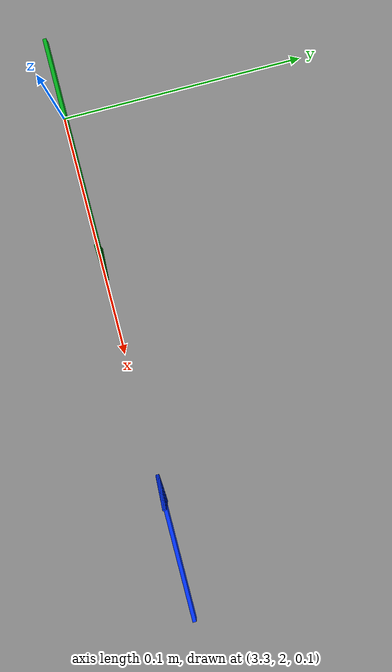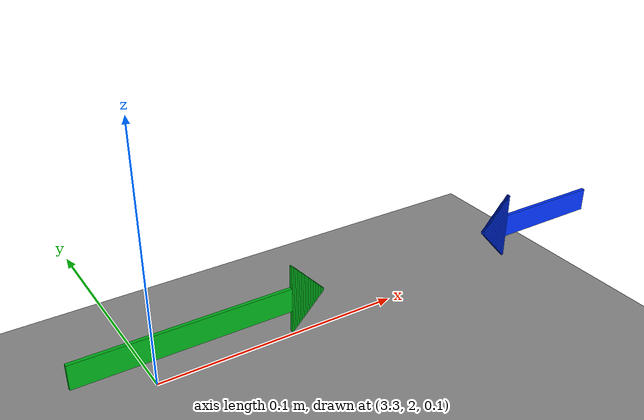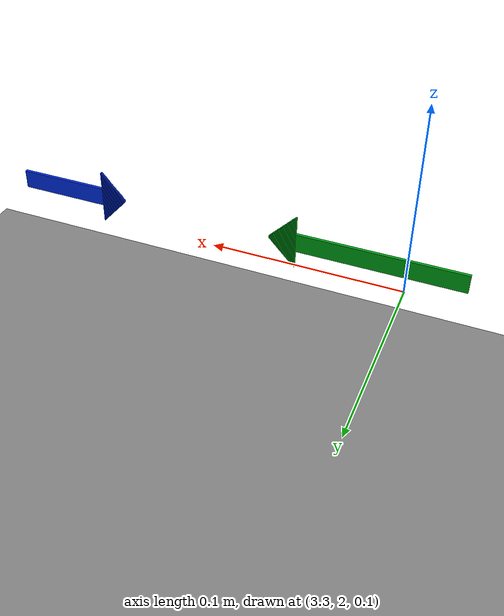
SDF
<sdf version="1.9">
 <world name="ros2_world">
  <model name="ground_plane">
   <static>true</static>
   <link name="link">
    <collision name="collision">
     <geometry><plane><normal>0 0 1</normal><size>30 30</size></plane></geometry>
    </collision>
    <visual name="visual">
     <geometry><plane><normal>0 0 1</normal><size>30 30</size></plane></geometry>
     <material><ambient>0.55 0.55 0.55 1</ambient><diffuse>0.55 0.55 0.55 1</diffuse></material>
    </visual>
   </link>
  </model>
  <model name="flechas">
   <static>true</static>
   <link name="flecha_13">
    <pose>3.32 2.00125 0.115 0 0 0</pose>
    <visual name="p0">
     <pose>-0.007 0 0 0 0 0</pose>
     <geometry><box><size>0.085 0.0015 0.01</size></box></geometry>
     <material><ambient>0 0.7 0.1 1</ambient><diffuse>0 0.7 0.1 1</diffuse></material>
    </visual>
    <visual name="p1">
     <pose>0.03578 0 0 0 0 0</pose>
     <geometry><box><size>0.00056 0.0015 0.029</size></box></geometry>
     <material><ambient>0 0.7 0.1 1</ambient><diffuse>0 0.7 0.1 1</diffuse></material>
    </visual>
    <visual name="p2">
     <pose>0.03634 0 0 0 0 0</pose>
     <geometry><box><size>0.00056 0.0015 0.02784</size></box></geometry>
     <material><ambient>0 0.7 0.1 1</ambient><diffuse>0 0.7 0.1 1</diffuse></material>
    </visual>
    <visual name="p3">
     <pose>0.0369 0 0 0 0 0</pose>
     <geometry><box><size>0.00056 0.0015 0.02668</size></box></geometry>
     <material><ambient>0 0.7 0.1 1</ambient><diffuse>0 0.7 0.1 1</diffuse></material>
    </visual>
    <visual name="p4">
     <pose>0.03746 0 0 0 0 0</pose>
     <geometry><box><size>0.00056 0.0015 0.02552</size></box></geometry>
     <material><ambient>0 0.7 0.1 1</ambient><diffuse>0 0.7 0.1 1</diffuse></material>
    </visual>
    <visual name="p5">
     <pose>0.03802 0 0 0 0 0</pose>
     <geometry><box><size>0.00056 0.0015 0.02436</size></box></geometry>
     <material><ambient>0 0.7 0.1 1</ambient><diffuse>0 0.7 0.1 1</diffuse></material>
    </visual>
    <visual name="p6">
     <pose>0.03858 0 0 0 0 0</pose>
     <geometry><box><size>0.00056 0.0015 0.0232</size></box></geometry>
     <material><ambient>0 0.7 0.1 1</ambient><diffuse>0 0.7 0.1 1</diffuse></material>
    </visual>
    <visual name="p7">
     <pose>0.03914 0 0 0 0 0</pose>
     <geometry><box><size>0.00056 0.0015 0.02204</size></box></geometry>
     <material><ambient>0 0.7 0.1 1</ambient><diffuse>0 0.7 0.1 1</diffuse></material>
    </visual>
    <visual name="p8">
     <pose>0.0397 0 0 0 0 0</pose>
     <geometry><box><size>0.00056 0.0015 0.02088</size></box></geometry>
     <material><ambient>0 0.7 0.1 1</ambient><diffuse>0 0.7 0.1 1</diffuse></material>
    </visual>
    <visual name="p9">
     <pose>0.04026 0 0 0 0 0</pose>
     <geometry><box><size>0.00056 0.0015 0.01972</size></box></geometry>
     <material><ambient>0 0.7 0.1 1</ambient><diffuse>0 0.7 0.1 1</diffuse></material>
    </visual>
    <visual name="p10">
     <pose>0.04082 0 0 0 0 0</pose>
     <geometry><box><size>0.00056 0.0015 0.01856</size></box></geometry>
     <material><ambient>0 0.7 0.1 1</ambient><diffuse>0 0.7 0.1 1</diffuse></material>
    </visual>
    <visual name="p11">
     <pose>0.04138 0 0 0 0 0</pose>
     <geometry><box><size>0.00056 0.0015 0.0174</size></box></geometry>
     <material><ambient>0 0.7 0.1 1</ambient><diffuse>0 0.7 0.1 1</diffuse></material>
    </visual>
    <visual name="p12">
     <pose>0.04194 0 0 0 0 0</pose>
     <geometry><box><size>0.00056 0.0015 0.01624</size></box></geometry>
     <material><ambient>0 0.7 0.1 1</ambient><diffuse>0 0.7 0.1 1</diffuse></material>
    </visual>
    <visual name="p13">
     <pose>0.0425 0 0 0 0 0</pose>
     <geometry><box><size>0.00056 0.0015 0.01508</size></box></geometry>
     <material><ambient>0 0.7 0.1 1</ambient><diffuse>0 0.7 0.1 1</diffuse></material>
    </visual>
    <visual name="p14">
     <pose>0.04306 0 0 0 0 0</pose>
     <geometry><box><size>0.00056 0.0015 0.01392</size></box></geometry>
     <material><ambient>0 0.7 0.1 1</ambient><diffuse>0 0.7 0.1 1</diffuse></material>
    </visual>
    <visual name="p15">
     <pose>0.04362 0 0 0 0 0</pose>
     <geometry><box><size>0.00056 0.0015 0.01276</size></box></geometry>
     <material><ambient>0 0.7 0.1 1</ambient><diffuse>0 0.7 0.1 1</diffuse></material>
    </visual>
    <visual name="p16">
     <pose>0.04418 0 0 0 0 0</pose>
     <geometry><box><size>0.00056 0.0015 0.0116</size></box></geometry>
     <material><ambient>0 0.7 0.1 1</ambient><diffuse>0 0.7 0.1 1</diffuse></material>
    </visual>
    <visual name="p17">
     <pose>0.04474 0 0 0 0 0</pose>
     <geometry><box><size>0.00056 0.0015 0.01044</size></box></geometry>
     <material><ambient>0 0.7 0.1 1</ambient><diffuse>0 0.7 0.1 1</diffuse></material>
    </visual>
    <visual name="p18">
     <pose>0.0453 0 0 0 0 0</pose>
     <geometry><box><size>0.00056 0.0015 0.00928</size></box></geometry>
     <material><ambient>0 0.7 0.1 1</ambient><diffuse>0 0.7 0.1 1</diffuse></material>
    </visual>
    <visual name="p19">
     <pose>0.04586 0 0 0 0 0</pose>
     <geometry><box><size>0.00056 0.0015 0.00812</size></box></geometry>
     <material><ambient>0 0.7 0.1 1</ambient><diffuse>0 0.7 0.1 1</diffuse></material>
    </visual>
    <visual name="p20">
     <pose>0.04642 0 0 0 0 0</pose>
     <geometry><box><size>0.00056 0.0015 0.00696</size></box></geometry>
     <material><ambient>0 0.7 0.1 1</ambient><diffuse>0 0.7 0.1 1</diffuse></material>
    </visual>
    <visual name="p21">
     <pose>0.04698 0 0 0 0 0</pose>
     <geometry><box><size>0.00056 0.0015 0.0058</size></box></geometry>
     <material><ambient>0 0.7 0.1 1</ambient><diffuse>0 0.7 0.1 1</diffuse></material>
    </visual>
    <visual name="p22">
     <pose>0.04754 0 0 0 0 0</pose>
     <geometry><box><size>0.00056 0.0015 0.00464</size></box></geometry>
     <material><ambient>0 0.7 0.1 1</ambient><diffuse>0 0.7 0.1 1</diffuse></material>
    </visual>
    <visual name="p23">
     <pose>0.0481 0 0 0 0 0</pose>
     <geometry><box><size>0.00056 0.0015 0.00348</size></box></geometry>
     <material><ambient>0 0.7 0.1 1</ambient><diffuse>0 0.7 0.1 1</diffuse></material>
    </visual>
    <visual name="p24">
     <pose>0.04866 0 0 0 0 0</pose>
     <geometry><box><size>0.00056 0.0015 0.00232</size></box></geometry>
     <material><ambient>0 0.7 0.1 1</ambient><diffuse>0 0.7 0.1 1</diffuse></material>
    </visual>
    <visual name="p25">
     <pose>0.04922 0 0 0 0 0</pose>
     <geometry><box><size>0.00056 0.0015 0.00116</size></box></geometry>
     <material><ambient>0 0.7 0.1 1</ambient><diffuse>0 0.7 0.1 1</diffuse></material>
    </visual>
   </link>
   <link name="flecha_14">
    <pose>3.48 2.00125 0.115 0 0 3.14159</pose>
    <visual name="p0">
     <pose>-0.0065 0 0 0 0 0</pose>
     <geometry><box><size>0.047 0.0015 0.01</size></box></geometry>
     <material><ambient>0 0.2 1 1</ambient><diffuse>0 0.2 1 1</diffuse></material>
    </visual>
    <visual name="p1">
     <pose>0.01726 0 0 0 0 0</pose>
     <geometry><box><size>0.00052 0.0015 0.029</size></box></geometry>
     <material><ambient>0 0.2 1 1</ambient><diffuse>0 0.2 1 1</diffuse></material>
    </visual>
    <visual name="p2">
     <pose>0.01778 0 0 0 0 0</pose>
     <geometry><box><size>0.00052 0.0015 0.02784</size></box></geometry>
     <material><ambient>0 0.2 1 1</ambient><diffuse>0 0.2 1 1</diffuse></material>
    </visual>
    <visual name="p3">
     <pose>0.0183 0 0 0 0 0</pose>
     <geometry><box><size>0.00052 0.0015 0.02668</size></box></geometry>
     <material><ambient>0 0.2 1 1</ambient><diffuse>0 0.2 1 1</diffuse></material>
    </visual>
    <visual name="p4">
     <pose>0.01882 0 0 0 0 0</pose>
     <geometry><box><size>0.00052 0.0015 0.02552</size></box></geometry>
     <material><ambient>0 0.2 1 1</ambient><diffuse>0 0.2 1 1</diffuse></material>
    </visual>
    <visual name="p5">
     <pose>0.01934 0 0 0 0 0</pose>
     <geometry><box><size>0.00052 0.0015 0.02436</size></box></geometry>
     <material><ambient>0 0.2 1 1</ambient><diffuse>0 0.2 1 1</diffuse></material>
    </visual>
    <visual name="p6">
     <pose>0.01986 0 0 0 0 0</pose>
     <geometry><box><size>0.00052 0.0015 0.0232</size></box></geometry>
     <material><ambient>0 0.2 1 1</ambient><diffuse>0 0.2 1 1</diffuse></material>
    </visual>
    <visual name="p7">
     <pose>0.02038 0 0 0 0 0</pose>
     <geometry><box><size>0.00052 0.0015 0.02204</size></box></geometry>
     <material><ambient>0 0.2 1 1</ambient><diffuse>0 0.2 1 1</diffuse></material>
    </visual>
    <visual name="p8">
     <pose>0.0209 0 0 0 0 0</pose>
     <geometry><box><size>0.00052 0.0015 0.02088</size></box></geometry>
     <material><ambient>0 0.2 1 1</ambient><diffuse>0 0.2 1 1</diffuse></material>
    </visual>
    <visual name="p9">
     <pose>0.02142 0 0 0 0 0</pose>
     <geometry><box><size>0.00052 0.0015 0.01972</size></box></geometry>
     <material><ambient>0 0.2 1 1</ambient><diffuse>0 0.2 1 1</diffuse></material>
    </visual>
    <visual name="p10">
     <pose>0.02194 0 0 0 0 0</pose>
     <geometry><box><size>0.00052 0.0015 0.01856</size></box></geometry>
     <material><ambient>0 0.2 1 1</ambient><diffuse>0 0.2 1 1</diffuse></material>
    </visual>
    <visual name="p11">
     <pose>0.02246 0 0 0 0 0</pose>
     <geometry><box><size>0.00052 0.0015 0.0174</size></box></geometry>
     <material><ambient>0 0.2 1 1</ambient><diffuse>0 0.2 1 1</diffuse></material>
    </visual>
    <visual name="p12">
     <pose>0.02298 0 0 0 0 0</pose>
     <geometry><box><size>0.00052 0.0015 0.01624</size></box></geometry>
     <material><ambient>0 0.2 1 1</ambient><diffuse>0 0.2 1 1</diffuse></material>
    </visual>
    <visual name="p13">
     <pose>0.0235 0 0 0 0 0</pose>
     <geometry><box><size>0.00052 0.0015 0.01508</size></box></geometry>
     <material><ambient>0 0.2 1 1</ambient><diffuse>0 0.2 1 1</diffuse></material>
    </visual>
    <visual name="p14">
     <pose>0.02402 0 0 0 0 0</pose>
     <geometry><box><size>0.00052 0.0015 0.01392</size></box></geometry>
     <material><ambient>0 0.2 1 1</ambient><diffuse>0 0.2 1 1</diffuse></material>
    </visual>
    <visual name="p15">
     <pose>0.02454 0 0 0 0 0</pose>
     <geometry><box><size>0.00052 0.0015 0.01276</size></box></geometry>
     <material><ambient>0 0.2 1 1</ambient><diffuse>0 0.2 1 1</diffuse></material>
    </visual>
    <visual name="p16">
     <pose>0.02506 0 0 0 0 0</pose>
     <geometry><box><size>0.00052 0.0015 0.0116</size></box></geometry>
     <material><ambient>0 0.2 1 1</ambient><diffuse>0 0.2 1 1</diffuse></material>
    </visual>
    <visual name="p17">
     <pose>0.02558 0 0 0 0 0</pose>
     <geometry><box><size>0.00052 0.0015 0.01044</size></box></geometry>
     <material><ambient>0 0.2 1 1</ambient><diffuse>0 0.2 1 1</diffuse></material>
    </visual>
    <visual name="p18">
     <pose>0.0261 0 0 0 0 0</pose>
     <geometry><box><size>0.00052 0.0015 0.00928</size></box></geometry>
     <material><ambient>0 0.2 1 1</ambient><diffuse>0 0.2 1 1</diffuse></material>
    </visual>
    <visual name="p19">
     <pose>0.02662 0 0 0 0 0</pose>
     <geometry><box><size>0.00052 0.0015 0.00812</size></box></geometry>
     <material><ambient>0 0.2 1 1</ambient><diffuse>0 0.2 1 1</diffuse></material>
    </visual>
    <visual name="p20">
     <pose>0.02714 0 0 0 0 0</pose>
     <geometry><box><size>0.00052 0.0015 0.00696</size></box></geometry>
     <material><ambient>0 0.2 1 1</ambient><diffuse>0 0.2 1 1</diffuse></material>
    </visual>
    <visual name="p21">
     <pose>0.02766 0 0 0 0 0</pose>
     <geometry><box><size>0.00052 0.0015 0.0058</size></box></geometry>
     <material><ambient>0 0.2 1 1</ambient><diffuse>0 0.2 1 1</diffuse></material>
    </visual>
    <visual name="p22">
     <pose>0.02818 0 0 0 0 0</pose>
     <geometry><box><size>0.00052 0.0015 0.00464</size></box></geometry>
     <material><ambient>0 0.2 1 1</ambient><diffuse>0 0.2 1 1</diffuse></material>
    </visual>
    <visual name="p23">
     <pose>0.0287 0 0 0 0 0</pose>
     <geometry><box><size>0.00052 0.0015 0.00348</size></box></geometry>
     <material><ambient>0 0.2 1 1</ambient><diffuse>0 0.2 1 1</diffuse></material>
    </visual>
    <visual name="p24">
     <pose>0.02922 0 0 0 0 0</pose>
     <geometry><box><size>0.00052 0.0015 0.00232</size></box></geometry>
     <material><ambient>0 0.2 1 1</ambient><diffuse>0 0.2 1 1</diffuse></material>
    </visual>
    <visual name="p25">
     <pose>0.02974 0 0 0 0 0</pose>
     <geometry><box><size>0.00052 0.0015 0.00116</size></box></geometry>
     <material><ambient>0 0.2 1 1</ambient><diffuse>0 0.2 1 1</diffuse></material>
    </visual>
   </link>
  </model>
 </world>
</sdf>
